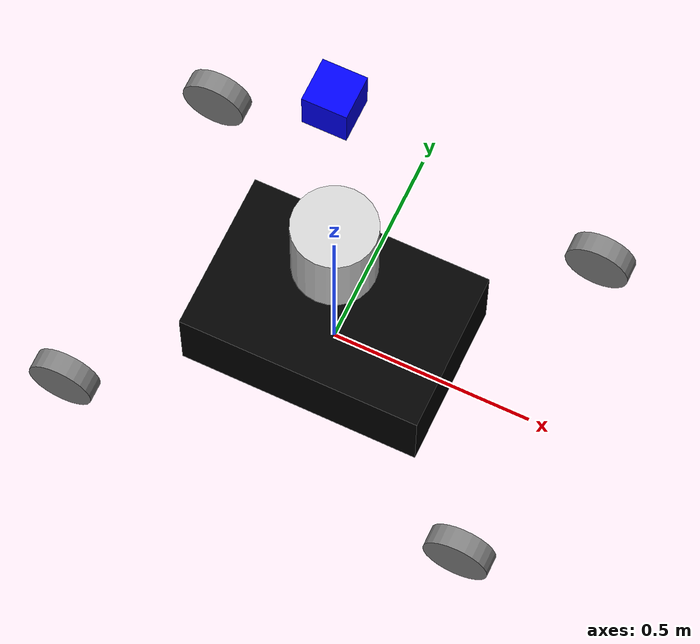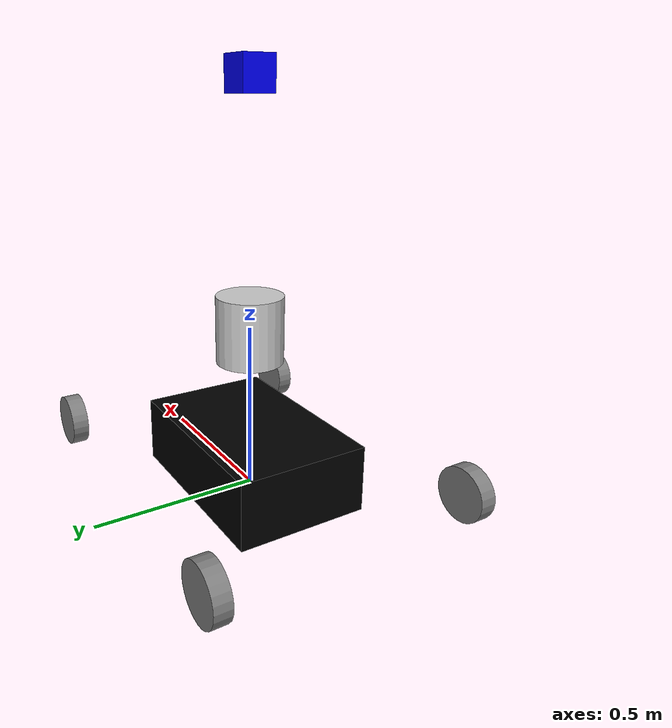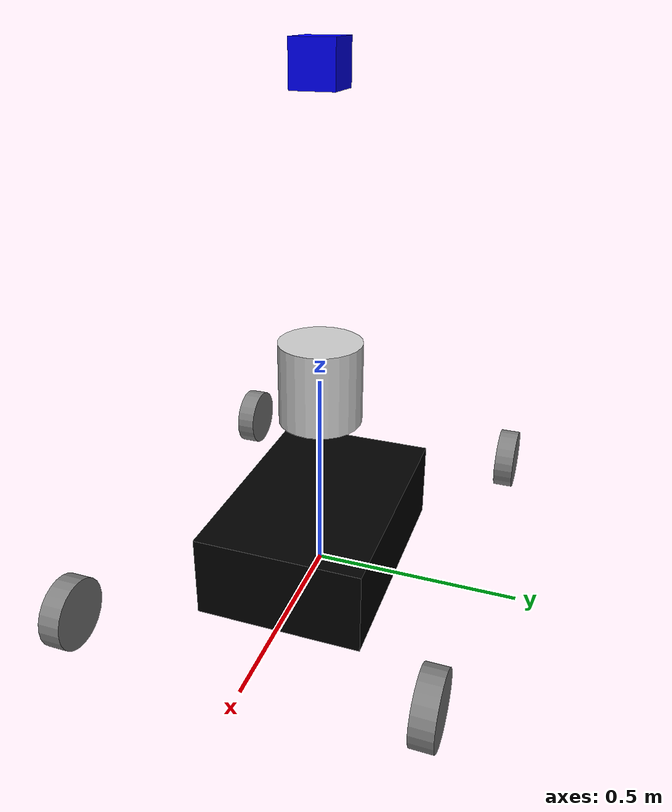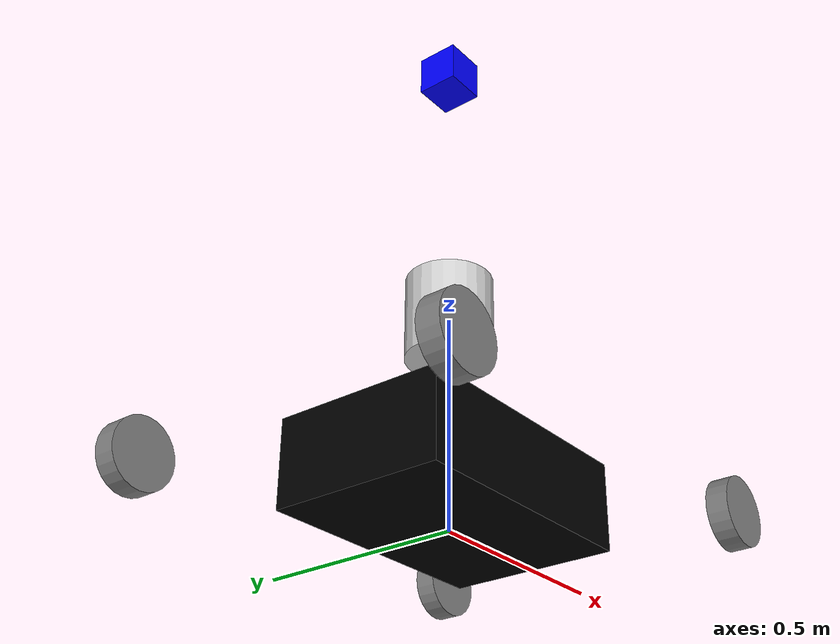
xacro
<?xml version="1.0"?>
<robot name="limo_ur5e" xmlns:xacro="http://www.ros.org/wiki/xacro">

  <!-- Base Link -->
  <link name="base_link">
    <visual>
      <geometry>
        <box size="0.6 0.4 0.2"/>
      </geometry>
      <origin xyz="0 0 0.1"/>
      <material name="black">
        <color rgba="0 0 0 1"/>
      </material>
    </visual>
  </link>

  <!-- Wheels -->
  <xacro:macro name="wheel" params="name x y">
    <link name="${name}">
      <visual>
        <geometry>
          <cylinder radius="0.08" length="0.05"/>
        </geometry>
        <origin xyz="${x} ${y} 0.05" rpy="1.57 0 0"/>
        <material name="gray">
          <color rgba="0.5 0.5 0.5 1"/>
        </material>
      </visual>
    </link>
    <joint name="${name}_joint" type="continuous">
      <parent link="base_link"/>
      <child link="${name}"/>
      <origin xyz="${x} ${y} 0.05" rpy="0 0 0"/>
      <axis xyz="0 1 0"/>
    </joint>
  </xacro:macro>

  <xacro:wheel name="front_left_wheel"  x="0.25"  y="0.2"/>
  <xacro:wheel name="front_right_wheel" x="0.25"  y="-0.2"/>
  <xacro:wheel name="rear_left_wheel"   x="-0.25" y="0.2"/>
  <xacro:wheel name="rear_right_wheel"  x="-0.25" y="-0.2"/>

  <!-- UR5e Arm Base -->
  <link name="ur5e_base_link">
    <visual>
      <geometry>
        <cylinder radius="0.1" length="0.2"/>
      </geometry>
      <origin xyz="0 0 0.3"/>
      <material name="silver">
        <color rgba="0.8 0.8 0.8 1"/>
      </material>
    </visual>
  </link>

  <joint name="base_to_ur5e" type="fixed">
    <parent link="base_link"/>
    <child link="ur5e_base_link"/>
    <origin xyz="0 0 0.2" rpy="0 0 0"/>
  </joint>

  <!-- Simple Gripper -->
  <link name="gripper_link">
    <visual>
      <geometry>
        <box size="0.1 0.1 0.1"/>
      </geometry>
      <origin xyz="0 0 0.6"/>
      <material name="blue">
        <color rgba="0 0 1 1"/>
      </material>
    </visual>
  </link>

  <joint name="ur5e_to_gripper" type="fixed">
    <parent link="ur5e_base_link"/>
    <child link="gripper_link"/>
    <origin xyz="0 0 0.4" rpy="0 0 0"/>
  </joint>

  <!-- ros2_control -->
  <ros2_control name="DiffBotSystem" type="system">
    <hardware>
      <plugin>fake_components/GenericSystem</plugin>
    </hardware>

    <joint name="front_left_wheel_joint">
      <command_interface name="velocity"/>
      <state_interface name="position"/>
      <state_interface name="velocity"/>
    </joint>
    <joint name="front_right_wheel_joint">
      <command_interface name="velocity"/>
      <state_interface name="position"/>
      <state_interface name="velocity"/>
    </joint>
    <joint name="rear_left_wheel_joint">
      <command_interface name="velocity"/>
      <state_interface name="position"/>
      <state_interface name="velocity"/>
    </joint>
    <joint name="rear_right_wheel_joint">
      <command_interface name="velocity"/>
      <state_interface name="position"/>
      <state_interface name="velocity"/>
    </joint>

  </ros2_control>

</robot>
